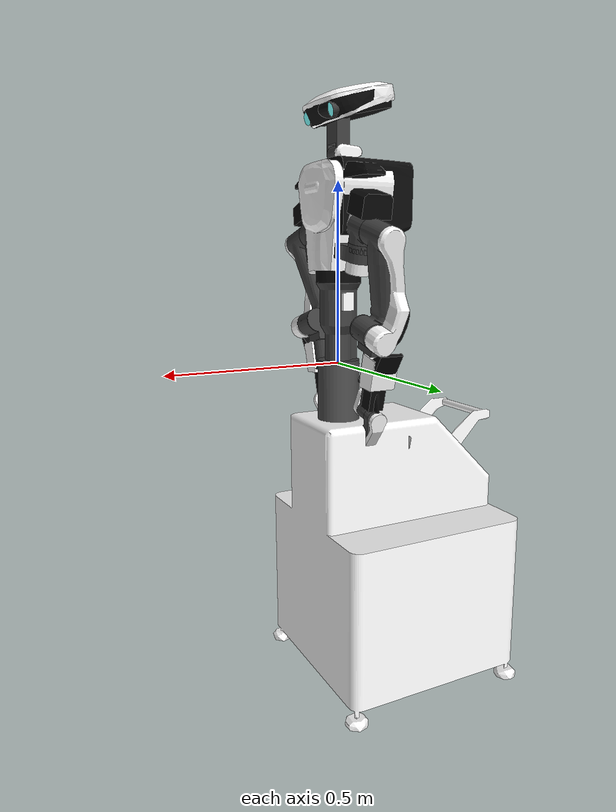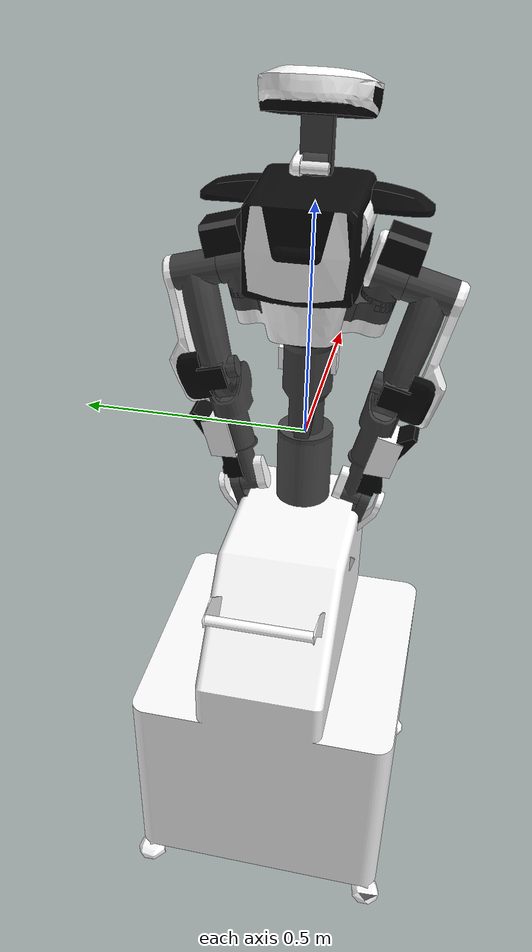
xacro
<?xml version="1.0"?>
<robot name="NextageOpen"
       xmlns:xi="http://www.w3.org/2001/XInclude"
       xmlns:gazebo="http://playerstage.sourceforge.net/gazebo/xmlschema/#gz"
       xmlns:model="http://playerstage.sourceforge.net/gazebo/xmlschema/#model"
       xmlns:sensor="http://playerstage.sourceforge.net/gazebo/xmlschema/#sensor"
       xmlns:body="http://playerstage.sourceforge.net/gazebo/xmlschema/#body"
       xmlns:geom="http://playerstage.sourceforge.net/gazebo/xmlschema/#geom"
       xmlns:joint="http://playerstage.sourceforge.net/gazebo/xmlschema/#joint"
       xmlns:interface="http://playerstage.sourceforge.net/gazebo/xmlschema/#interface"
       xmlns:rendering="http://playerstage.sourceforge.net/gazebo/xmlschema/#rendering"
       xmlns:renderable="http://playerstage.sourceforge.net/gazebo/xmlschema/#renderable"
       xmlns:controller="http://playerstage.sourceforge.net/gazebo/xmlschema/#controller"
       xmlns:physics="http://playerstage.sourceforge.net/gazebo/xmlschema/#physics"
       xmlns:xacro="http://www.ros.org/wiki/xacro">
  <xacro:include filename="$(find nextage_description)/urdf/materials.urdf.xacro" />

  <xacro:macro name="gazebo_nx_link" params="name color">
    <gazebo reference="gazebo_${name}">
      <material>Gazebo/${color}</material>
    </gazebo>
  </xacro:macro>

  <xacro:macro name="transmission_nx_joint" params="name">
    <transmission name="${name}_Trans">
      <type>transmission_interface/SimpleTransmission</type>
      <joint name="${name}">
        <hardwareInterface>EffortJointInterface</hardwareInterface>
      </joint>
      <actuator name="${name}_Motor">
        <hardwareInterface>EffortJointInterface</hardwareInterface>
        <mechanicalReduction>1</mechanicalReduction>
      </actuator>
    </transmission>
  </xacro:macro>

  <xacro:gazebo_nx_link name="WAIST" color="Black" />
  <link name="WAIST">
    <visual>
      <origin xyz="0 0 0.97" rpy="0 -0 0"/>
      <geometry>
        <mesh filename="package://nextage_description/urdf/meshes/WAIST_Link_mesh.dae" scale="1 1 1" />
      </geometry>
    </visual>
    <collision>
      <origin xyz="0 0 0.97" rpy="0 -0 0"/>
      <geometry>
        <mesh filename="package://nextage_description/urdf/meshes/WAIST_Link_mesh.dae" scale="1 1 1" />
      </geometry>
    </collision>
    <inertial>
      <mass value="1000" />
      <origin xyz="0 0 0" rpy="0 -0 0"/>
      <inertia ixx="20" ixy="0" ixz="0" iyy="20" iyz="0" izz="20"/>
    </inertial>
  </link>

  <xacro:gazebo_nx_link name="CHEST_JOINT0_Link" color="Black" />
  <link name="CHEST_JOINT0_Link">
    <visual>
      <origin xyz="0 0 0" rpy="0 -0 0"/>
      <geometry>
        <mesh filename="package://nextage_description/urdf/meshes/CHEST_JOINT0_Link_mesh.dae" scale="1 1 1" />
      </geometry>
    </visual>
    <collision>
      <origin xyz="0 0 0" rpy="0 -0 0"/>
      <geometry>
        <mesh filename="package://nextage_description/urdf/meshes/CHEST_JOINT0_Link_mesh.dae" scale="1 1 1" />
      </geometry>
    </collision>
    <inertial>
      <mass value="3.0" />
      <origin xyz="0 0 0" rpy="0 -0 0"/>
      <inertia ixx="0.0639575" ixy="-0.00022833" ixz="0.00011172" iyy="0.0310845" iyz="6.48e-05" izz="0.0501107"/>
    </inertial>
  </link>

  <xacro:gazebo_nx_link name="HEAD_JOINT0_Link" color="Black" />
  <link name="HEAD_JOINT0_Link">
    <visual>
      <origin xyz="0 0 0.5695" rpy="0 -0 0"/>
      <geometry>
        <mesh filename="package://nextage_description/urdf/meshes/HEAD_JOINT0_Link_mesh.dae" scale="1 1 1" />
      </geometry>
    </visual>
    <collision>
      <origin xyz="0 0 0.5695" rpy="0 -0 0"/>
      <geometry>
        <mesh filename="package://nextage_description/urdf/meshes/HEAD_JOINT0_Link_mesh.dae" scale="1 1 1" />
      </geometry>
    </collision>
    <inertial>
      <mass value="0.317929" />
      <origin xyz="-2.292e-05 0.00547848 -0.00784016" rpy="0 -0 0"/>
      <inertia ixx="0.00027682" ixy="3e-08" ixz="-3.3e-07" iyy="0.00013009" iyz="-1.092e-05" izz="0.00020954"/>
    </inertial>
  </link>

  <xacro:gazebo_nx_link name="HEAD_JOINT1_Link" color="Black" />
  <link name="HEAD_JOINT1_Link">
    <visual>
      <origin xyz="0 0 0" rpy="0 -0 0"/>
      <geometry>
        <mesh filename="package://nextage_description/urdf/meshes/HEAD_JOINT1_Link_mesh.dae" scale="1 1 1" />
      </geometry>
    </visual>
    <collision>
      <origin xyz="0 0 0" rpy="0 -0 0"/>
      <geometry>
        <mesh filename="package://nextage_description/urdf/meshes/HEAD_JOINT1_Link_mesh.dae" scale="1 1 1" />
      </geometry>
    </collision>
    <inertial>
      <mass value="0.0808593" />
      <inertia ixx="1e-3" ixy="0" ixz="0" iyy="1e-3" iyz="0" izz="1e-3"/>
    </inertial>
    <bow tags="effector"/>
  </link>

  <xacro:gazebo_nx_link name="LARM_JOINT0_Link" color="Black" />
  <link name="LARM_JOINT0_Link">
    <visual>
      <origin xyz="0 0.145 0.370296" rpy="-0.261799 0 0"/>
      <geometry>
        <mesh filename="package://nextage_description/urdf/meshes/LARM_JOINT0_Link_mesh.dae" scale="1 1 1" />
      </geometry>
    </visual>
    <collision>
      <origin xyz="0 0.145 0.370296" rpy="-0.261799 0 0"/>
      <geometry>
        <mesh filename="package://nextage_description/urdf/meshes/LARM_JOINT0_Link_mesh.dae" scale="1 1 1" />
      </geometry>
    </collision>
    <inertial>
      <mass value="1.32626" />
      <origin xyz="-0.00226388 -0.00521383 0.0156081" rpy="0 -0 0"/>
      <inertia ixx="0.00207537" ixy="0.00011276" ixz="8.927e-05" iyy="0.00240295" iyz="-4.57e-05" izz="0.00141912"/>
    </inertial>
  </link>
  <xacro:gazebo_nx_link name="LARM_JOINT1_Link" color="Black" />
  <link name="LARM_JOINT1_Link">
    <visual>
      <origin xyz="0 0 0" rpy="0 -0 0"/>
      <geometry>
        <mesh filename="package://nextage_description/urdf/meshes/LARM_JOINT1_Link_mesh.dae" scale="1 1 1" />
      </geometry>
    </visual>
    <collision>
      <origin xyz="0 0 0" rpy="0 -0 0"/>
      <geometry>
        <mesh filename="package://nextage_description/urdf/meshes/LARM_JOINT1_Link_mesh.dae" scale="1 1 1" />
      </geometry>
    </collision>
    <inertial>
      <mass value="1.14898" />
      <origin xyz="-5.236e-05 0.0583134 -0.107061" rpy="0 -0 0"/>
      <inertia ixx="0.0154168" ixy="9.95417e-07" ixz="3.38147e-06" iyy="0.0147117" iyz="0.00213719" izz="0.0012658"/>
    </inertial>
  </link>
  <xacro:gazebo_nx_link name="LARM_JOINT2_Link" color="Black" />
  <link name="LARM_JOINT2_Link">
    <visual>
      <origin xyz="0 0.095 -0.25" rpy="0 -0 0"/>
      <geometry>
        <mesh filename="package://nextage_description/urdf/meshes/LARM_JOINT2_Link_mesh.dae" scale="1 1 1" />
      </geometry>
    </visual>
    <collision>
      <origin xyz="0 0.095 -0.25" rpy="0 -0 0"/>
      <geometry>
        <mesh filename="package://nextage_description/urdf/meshes/LARM_JOINT2_Link_mesh.dae" scale="1 1 1" />
      </geometry>
    </collision>
    <inertial>
      <mass value="0.577518" />
      <origin xyz="-2.254e-05 0.00167107 -0.0715116" rpy="0 -0 0"/>
      <inertia ixx="0.00143966" ixy="-3e-07" ixz="1.2e-06" iyy="0.00141763" iyz="-7.596e-05" izz="0.0001972"/>
    </inertial>
  </link>
  <xacro:gazebo_nx_link name="LARM_JOINT3_Link" color="Black" />
  <link name="LARM_JOINT3_Link">
    <visual>
      <origin xyz="-0.03 0 0" rpy="0 -0 0"/>
      <geometry>
        <mesh filename="package://nextage_description/urdf/meshes/LARM_JOINT3_Link_mesh.dae" scale="1 1 1" />
      </geometry>
    </visual>
    <collision>
      <origin xyz="-0.03 0 0" rpy="0 -0 0"/>
      <geometry>
        <mesh filename="package://nextage_description/urdf/meshes/LARM_JOINT3_Link_mesh.dae" scale="1 1 1" />
      </geometry>
    </collision>
    <inertial>
      <mass value="0.457418" />
      <origin xyz="-1.788e-05 -0.00395812 -0.20273" rpy="0 -0 0"/>
      <inertia ixx="0.00069205" ixy="3e-08" ixz="5.2e-07" iyy="0.00068903" iyz="-1.915e-05" izz="0.00013509"/>
    </inertial>
  </link>
  <xacro:gazebo_nx_link name="LARM_JOINT4_Link" color="Black" />
  <link name="LARM_JOINT4_Link">
    <visual>
      <origin xyz="0 0 -0.235" rpy="0 -0 0"/>
      <geometry>
        <mesh filename="package://nextage_description/urdf/meshes/LARM_JOINT4_Link_mesh.dae" scale="1 1 1" />
      </geometry>
    </visual>
    <collision>
      <origin xyz="0 0 -0.235" rpy="0 -0 0"/>
      <geometry>
        <mesh filename="package://nextage_description/urdf/meshes/LARM_JOINT4_Link_mesh.dae" scale="1 1 1" />
      </geometry>
    </collision>
    <inertial>
      <mass value="0.418434" />
      <origin xyz="0.00243131 0.00379733 -0.0577036" rpy="0 -0 0"/>
      <inertia ixx="0.00052016" ixy="1.69e-06" ixz="7.9e-06" iyy="0.00050569" iyz="-5.377e-05" izz="0.00014004"/>
    </inertial>
  </link>
  <xacro:gazebo_nx_link name="LARM_JOINT5_Link" color="Black" />
  <link name="LARM_JOINT5_Link">
    <visual>
      <origin xyz="-0.047 0 -0.09" rpy="0 -0 0"/>
      <geometry>
        <mesh filename="package://nextage_description/urdf/meshes/LARM_JOINT5_Link_mesh.dae" scale="1 1 1" />
      </geometry>
    </visual>
    <collision>
      <origin xyz="-0.047 0 -0.09" rpy="0 -0 0"/>
      <geometry>
        <mesh filename="package://nextage_description/urdf/meshes/LARM_JOINT5_Link_mesh.dae" scale="1 1 1" />
      </geometry>
    </collision>
    <inertial>
      <mass value="1.05156" />
      <origin xyz="-0.048476 -3.2e-06 -0.0388988" rpy="0 -0 0"/>
      <inertia ixx="0.00194072" ixy="1.1e-07" ixz="-0.00042482" iyy="0.00209392" iyz="1.2e-07" izz="0.00035788"/>
    </inertial>
    <bow tags="effector"/>
  </link>
  <xacro:gazebo_nx_link name="RARM_JOINT0_Link" color="Black" />
  <link name="RARM_JOINT0_Link">
    <visual>
      <origin xyz="0 -0.145 0.370296" rpy="0.261799 -0 0"/>
      <geometry>
        <mesh filename="package://nextage_description/urdf/meshes/RARM_JOINT0_Link_mesh.dae" scale="1 1 1" />
      </geometry>
    </visual>
    <collision>
      <origin xyz="0 -0.145 0.370296" rpy="0.261799 -0 0"/>
      <geometry>
        <mesh filename="package://nextage_description/urdf/meshes/RARM_JOINT0_Link_mesh.dae" scale="1 1 1" />
      </geometry>
    </collision>
    <inertial>
      <mass value="1.32626" />
      <origin xyz="-0.00226388 0.00521383 0.0156081" rpy="0 -0 0"/>
      <inertia ixx="0.00207537" ixy="-0.00011276" ixz="8.927e-05" iyy="0.00240295" iyz="4.57e-05" izz="0.00141912"/>
    </inertial>
  </link>
  <xacro:gazebo_nx_link name="RARM_JOINT1_Link" color="Black" />
  <link name="RARM_JOINT1_Link">
    <visual>
      <origin xyz="0 0 0" rpy="0 -0 0"/>
      <geometry>
        <mesh filename="package://nextage_description/urdf/meshes/RARM_JOINT1_Link_mesh.dae" scale="1 1 1" />
      </geometry>
    </visual>
    <collision>
      <origin xyz="0 0 0" rpy="0 -0 0"/>
      <geometry>
        <mesh filename="package://nextage_description/urdf/meshes/RARM_JOINT1_Link_mesh.dae" scale="1 1 1" />
      </geometry>
    </collision>
    <inertial>
      <mass value="1.14898" />
      <origin xyz="-5.236e-05 -0.0583134 -0.107061" rpy="0 -0 0"/>
      <inertia ixx="0.0154168" ixy="-9.95417e-07" ixz="3.38147e-06" iyy="0.0147117" iyz="-0.00213719" izz="0.0012658"/>
    </inertial>
  </link>
  <xacro:gazebo_nx_link name="RARM_JOINT2_Link" color="Black" />
  <link name="RARM_JOINT2_Link">
    <visual>
      <origin xyz="0 -0.095 -0.25" rpy="0 -0 0"/>
      <geometry>
        <mesh filename="package://nextage_description/urdf/meshes/RARM_JOINT2_Link_mesh.dae" scale="1 1 1" />
      </geometry>
    </visual>
    <collision>
      <origin xyz="0 -0.095 -0.25" rpy="0 -0 0"/>
      <geometry>
        <mesh filename="package://nextage_description/urdf/meshes/RARM_JOINT2_Link_mesh.dae" scale="1 1 1" />
      </geometry>
    </collision>
    <inertial>
      <mass value="0.577518" />
      <origin xyz="-2.254e-05 -0.00167107 -0.0715116" rpy="0 -0 0"/>
      <inertia ixx="0.00143966" ixy="3e-07" ixz="1.2e-06" iyy="0.00141763" iyz="7.596e-05" izz="0.0001972"/>
    </inertial>
  </link>
  <xacro:gazebo_nx_link name="RARM_JOINT4_Link" color="Black" />
  <link name="RARM_JOINT3_Link">
    <visual>
      <origin xyz="-0.03 0 0" rpy="0 -0 0"/>
      <geometry>
        <mesh filename="package://nextage_description/urdf/meshes/RARM_JOINT3_Link_mesh.dae" scale="1 1 1" />
      </geometry>
    </visual>
    <collision>
      <origin xyz="-0.03 0 0" rpy="0 -0 0"/>
      <geometry>
        <mesh filename="package://nextage_description/urdf/meshes/RARM_JOINT3_Link_mesh.dae" scale="1 1 1" />
      </geometry>
    </collision>
    <inertial>
      <mass value="0.457418" />
      <origin xyz="-1.788e-05 0.00395812 -0.20273" rpy="0 -0 0"/>
      <inertia ixx="0.00069205" ixy="-3e-08" ixz="5.2e-07" iyy="0.00068903" iyz="1.915e-05" izz="0.00013509"/>
    </inertial>
  </link>
  <xacro:gazebo_nx_link name="RARM_JOINT4_Link" color="Black" />
  <link name="RARM_JOINT4_Link">
    <visual>
      <origin xyz="0 0 -0.235" rpy="0 -0 0"/>
      <geometry>
        <mesh filename="package://nextage_description/urdf/meshes/RARM_JOINT4_Link_mesh.dae" scale="1 1 1" />
      </geometry>
    </visual>
    <collision>
      <origin xyz="0 0 -0.235" rpy="0 -0 0"/>
      <geometry>
        <mesh filename="package://nextage_description/urdf/meshes/RARM_JOINT4_Link_mesh.dae" scale="1 1 1" />
      </geometry>
    </collision>
    <inertial>
      <mass value="0.418434" />
      <origin xyz="0.00243131 -0.00379733 -0.0577036" rpy="0 -0 0"/>
      <inertia ixx="0.00052016" ixy="-1.69e-06" ixz="7.9e-06" iyy="0.00050569" iyz="5.377e-05" izz="0.00014004"/>
    </inertial>
  </link>
  <xacro:gazebo_nx_link name="RARM_JOINT5_Link" color="Black" />
  <link name="RARM_JOINT5_Link">
    <visual>
      <origin xyz="-0.047 0 -0.09" rpy="0 -0 0"/>
      <geometry>
        <mesh filename="package://nextage_description/urdf/meshes/RARM_JOINT5_Link_mesh.dae" scale="1 1 1" />
      </geometry>
    </visual>
    <collision>
      <origin xyz="-0.047 0 -0.09" rpy="0 -0 0"/>
      <geometry>
        <mesh filename="package://nextage_description/urdf/meshes/RARM_JOINT5_Link_mesh.dae" scale="1 1 1" />
      </geometry>
    </collision>
    <inertial>
      <mass value="1.05156" />
      <origin xyz="-0.048476 3.2e-06 -0.0388988" rpy="0 -0 0"/>
      <inertia ixx="0.00194072" ixy="-1.1e-07" ixz="-0.00042482" iyy="0.00209392" iyz="-1.2e-07" izz="0.00035788"/>
    </inertial>
    <bow tags="effector"/>
  </link>
  <xacro:transmission_nx_joint name="CHEST_JOINT0" />
  <joint name="CHEST_JOINT0" type="revolute">
    <parent link="WAIST"/>
    <child  link="CHEST_JOINT0_Link"/>
    <origin xyz="0 0 0" rpy="0 -0 0 "/>
    <axis   xyz="0 0 1"/>
    <limit lower="-2.84489" upper="2.84489" effort="100" velocity="0.5" />
    <dynamics damping="0.2" friction="0" />
  </joint>
  <xacro:transmission_nx_joint name="HEAD_JOINT0" />
  <joint name="HEAD_JOINT0" type="revolute">
    <parent link="CHEST_JOINT0_Link"/>
    <child  link="HEAD_JOINT0_Link"/>
    <origin xyz="0 0 0.5695" rpy="0 -0 0 "/>
    <axis   xyz="0 0 1"/>
    <limit lower="-1.22173" upper="1.22173" effort="100" velocity="0.5" />
    <dynamics damping="0.2" friction="0" />
  </joint>
  <xacro:transmission_nx_joint name="HEAD_JOINT1" />
  <joint name="HEAD_JOINT1" type="revolute">
    <parent link="HEAD_JOINT0_Link"/>
    <child  link="HEAD_JOINT1_Link"/>
    <origin xyz="0 0 0" rpy="0 -0 0 "/>
    <axis   xyz="0 1 0"/>
    <limit lower="-0.349066" upper="1.22173" effort="100" velocity="0.5" />
    <dynamics damping="0.2" friction="0" />
  </joint>
  <xacro:transmission_nx_joint name="LARM_JOINT0" />
  <joint name="LARM_JOINT0" type="revolute">
    <parent link="CHEST_JOINT0_Link"/>
    <child  link="LARM_JOINT0_Link"/>
    <origin xyz="0 0.145 0.370296" rpy="-0.261799 0 0 "/>
    <axis   xyz="0 0 1"/>
    <limit lower="-1.53589" upper="1.53589" effort="150" velocity="0.5" />
    <dynamics damping="0.2" friction="0" />
  </joint>
  <xacro:transmission_nx_joint name="LARM_JOINT1" />
  <joint name="LARM_JOINT1" type="revolute">
    <parent link="LARM_JOINT0_Link"/>
    <child  link="LARM_JOINT1_Link"/>
    <origin xyz="0 0 0" rpy="0 -0 0 "/>
    <axis   xyz="0 1 0"/>
    <limit lower="-2.44346" upper="1.0472" effort="200" velocity="0.5" />
    <dynamics damping="0.2" friction="0" />
  </joint>
  <xacro:transmission_nx_joint name="LARM_JOINT2" />
  <joint name="LARM_JOINT2" type="revolute">
    <parent link="LARM_JOINT1_Link"/>
    <child  link="LARM_JOINT2_Link"/>
    <origin xyz="0 0.095 -0.25" rpy="0 -0 0 "/>
    <axis   xyz="0 1 0"/>
    <limit lower="-2.75762" upper="0" effort="100" velocity="0.5" />
    <dynamics damping="0.2" friction="0" />
  </joint>
  <xacro:transmission_nx_joint name="LARM_JOINT3" />
  <joint name="LARM_JOINT3" type="revolute">
    <parent link="LARM_JOINT2_Link"/>
    <child  link="LARM_JOINT3_Link"/>
    <origin xyz="-0.03 0 0" rpy="0 -0 0 "/>
    <axis   xyz="0 0 1"/>
    <limit lower="-1.8326" upper="2.87979" effort="100" velocity="0.5" />
    <dynamics damping="0.2" friction="0" />
  </joint>
  <xacro:transmission_nx_joint name="LARM_JOINT4" />
  <joint name="LARM_JOINT4" type="revolute">
    <parent link="LARM_JOINT3_Link"/>
    <child  link="LARM_JOINT4_Link"/>
    <origin xyz="0 0 -0.235" rpy="0 -0 0 "/>
    <axis   xyz="0 1 0"/>
    <limit lower="-1.74533" upper="1.74533" effort="100" velocity="0.5" />
    <dynamics damping="0.2" friction="0" />
  </joint>
  <xacro:transmission_nx_joint name="LARM_JOINT5" />
  <joint name="LARM_JOINT5" type="revolute">
    <parent link="LARM_JOINT4_Link"/>
    <child  link="LARM_JOINT5_Link"/>
    <origin xyz="-0.047 0 -0.09" rpy="0 -0 0 "/>
    <axis   xyz="1 0 0"/>
    <limit lower="-2.84489" upper="2.84489" effort="100" velocity="0.5" />
    <dynamics damping="0.2" friction="0" />
  </joint>
  <xacro:transmission_nx_joint name="RARM_JOINT0" />
  <joint name="RARM_JOINT0" type="revolute">
    <parent link="CHEST_JOINT0_Link"/>
    <child  link="RARM_JOINT0_Link"/>
    <origin xyz="0 -0.145 0.370296" rpy="0.261799 -0 0 "/>
    <axis   xyz="0 0 1"/>
    <limit lower="-1.53589" upper="1.53589" effort="150" velocity="0.5" />
    <dynamics damping="0.2" friction="0" />
  </joint>
  <xacro:transmission_nx_joint name="RARM_JOINT1" />
  <joint name="RARM_JOINT1" type="revolute">
    <parent link="RARM_JOINT0_Link"/>
    <child  link="RARM_JOINT1_Link"/>
    <origin xyz="0 0 0" rpy="0 -0 0 "/>
    <axis   xyz="0 1 0"/>
    <limit lower="-2.44346" upper="1.0472" effort="200" velocity="0.5" />
    <dynamics damping="0.2" friction="0" />
  </joint>
  <xacro:transmission_nx_joint name="RARM_JOINT2" />
  <joint name="RARM_JOINT2" type="revolute">
    <parent link="RARM_JOINT1_Link"/>
    <child  link="RARM_JOINT2_Link"/>
    <origin xyz="0 -0.095 -0.25" rpy="0 -0 0 "/>
    <axis   xyz="0 1 0"/>
    <limit lower="-2.75762" upper="0" effort="100" velocity="0.5" />
    <dynamics damping="0.2" friction="0" />
  </joint>
  <xacro:transmission_nx_joint name="RARM_JOINT3" />
  <joint name="RARM_JOINT3" type="revolute">
    <parent link="RARM_JOINT2_Link"/>
    <child  link="RARM_JOINT3_Link"/>
    <origin xyz="-0.03 0 0" rpy="0 -0 0 "/>
    <axis   xyz="0 0 1"/>
    <limit lower="-2.87979" upper="1.8326" effort="100" velocity="0.5" />
    <dynamics damping="0.2" friction="0" />
  </joint>
  <xacro:transmission_nx_joint name="RARM_JOINT4" />
  <joint name="RARM_JOINT4" type="revolute">
    <parent link="RARM_JOINT3_Link"/>
    <child  link="RARM_JOINT4_Link"/>
    <origin xyz="0 0 -0.235" rpy="0 -0 0 "/>
    <axis   xyz="0 1 0"/>
    <limit lower="-1.74533" upper="1.74533" effort="100" velocity="0.5" />
    <dynamics damping="0.2" friction="0" />
  </joint>
  <xacro:transmission_nx_joint name="RARM_JOINT5" />
  <joint name="RARM_JOINT5" type="revolute">
    <parent link="RARM_JOINT4_Link"/>
    <child  link="RARM_JOINT5_Link"/>
    <origin xyz="-0.047 0 -0.09" rpy="0 -0 0 "/>
    <axis   xyz="1 0 0"/>
    <limit lower="-2.84489" upper="2.84489" effort="100" velocity="0.5" />
    <dynamics damping="0.2" friction="0" />
  </joint>

  <!-- Gazebo plugin for ROS Control -->
  <gazebo>
    <plugin name="gazebo_ros_control" filename="libgazebo_ros_control.so">
      <robotNamespace>/</robotNamespace>
      <robotSimType>gazebo_ros_control/DefaultRobotHWSim</robotSimType>
    </plugin>
  </gazebo>

</robot>
